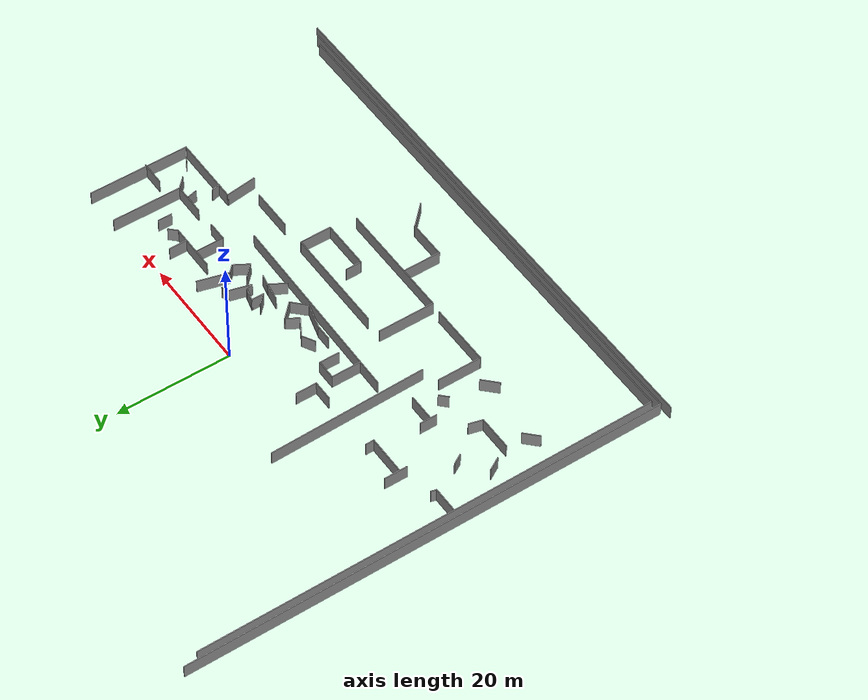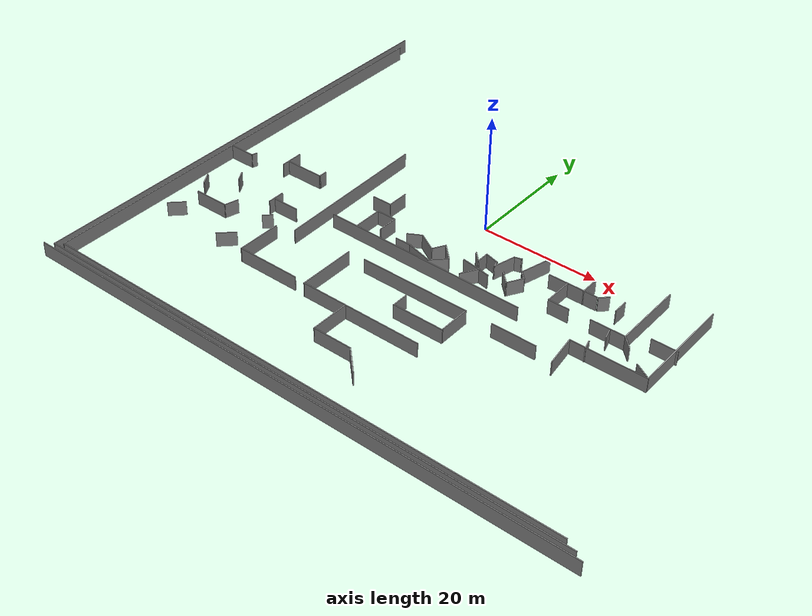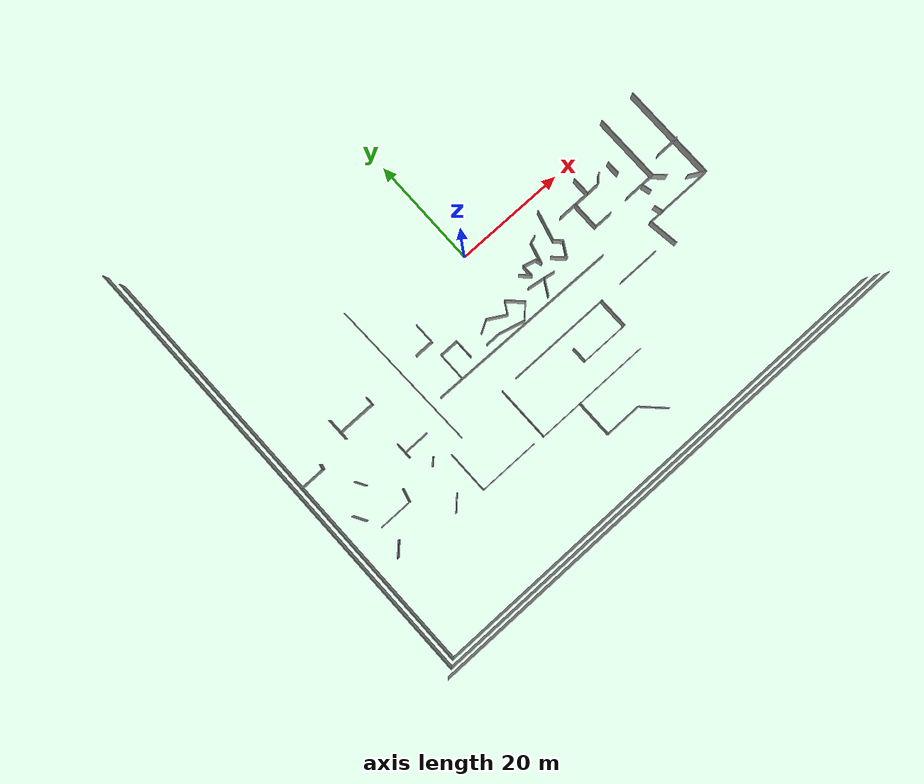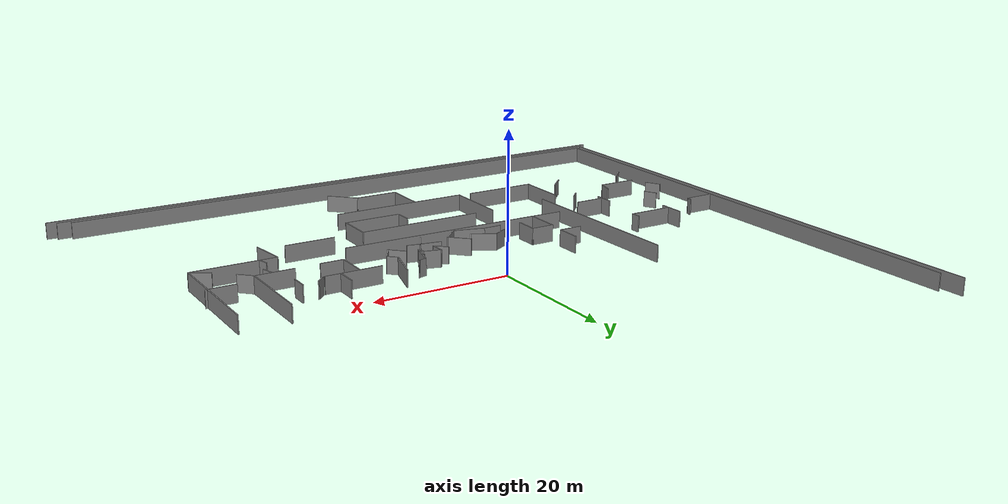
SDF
<sdf version="1.6">
 <model name="zee_floor">
  <pose>0.886578 0.586712 0 0 -0 0</pose>
  <link name="Wall_109">
   <collision name="Wall_109_Collision">
    <geometry><box><size>2 0.15 2.5</size></box></geometry>
    <pose>0 0 1.25 0 -0 0</pose>
   </collision>
   <visual name="Wall_109_Visual">
    <pose>0 0 1.25 0 -0 0</pose>
    <geometry><box><size>2 0.15 2.5</size></box></geometry>
    <material>
     <script><uri>file://media/materials/scripts/gazebo.material</uri><name>Gazebo/Grey</name></script>
     <ambient>1 1 1 1</ambient>
    </material>
    <meta><layer>0</layer></meta>
   </visual>
   <pose>-37.8806 -16.8796 0 0 -0 2.0944</pose>
  </link>
  <link name="Wall_11">
   <collision name="Wall_11_Collision">
    <geometry><box><size>3.5 0.15 2.5</size></box></geometry>
    <pose>0 0 1.25 0 -0 0</pose>
   </collision>
   <visual name="Wall_11_Visual">
    <pose>0 0 1.25 0 -0 0</pose>
    <geometry><box><size>3.5 0.15 2.5</size></box></geometry>
    <material>
     <script><uri>file://media/materials/scripts/gazebo.material</uri><name>Gazebo/Grey</name></script>
     <ambient>1 1 1 1</ambient>
    </material>
    <meta><layer>0</layer></meta>
   </visual>
   <pose>-15.9639 -7.56174 0 0 -0 0</pose>
  </link>
  <link name="Wall_112">
   <collision name="Wall_112_Collision">
    <geometry><box><size>6.75 0.15 2.5</size></box></geometry>
    <pose>0 0 1.25 0 -0 0</pose>
   </collision>
   <visual name="Wall_112_Visual">
    <pose>0 0 1.25 0 -0 0</pose>
    <geometry><box><size>6.75 0.15 2.5</size></box></geometry>
    <material>
     <script><uri>file://media/materials/scripts/gazebo.material</uri><name>Gazebo/Grey</name></script>
     <ambient>1 1 1 1</ambient>
    </material>
    <meta><layer>0</layer></meta>
   </visual>
   <pose>-31.3744 -8.64784 0 0 -0 0</pose>
  </link>
  <link name="Wall_113">
   <collision name="Wall_113_Collision">
    <geometry><box><size>1.5 0.15 2.5</size></box></geometry>
    <pose>0 0 1.25 0 -0 0</pose>
   </collision>
   <visual name="Wall_113_Visual">
    <pose>0 0 1.25 0 -0 0</pose>
    <geometry><box><size>1.5 0.15 2.5</size></box></geometry>
    <material>
     <script><uri>file://media/materials/scripts/gazebo.material</uri><name>Gazebo/Grey</name></script>
     <ambient>1 1 1 1</ambient>
    </material>
    <meta><layer>0</layer></meta>
   </visual>
   <pose>-28.0744 -7.97284 0 0 -0 1.5708</pose>
  </link>
  <link name="Wall_12">
   <collision name="Wall_12_Collision">
    <geometry><box><size>3.75 0.15 2.5</size></box></geometry>
    <pose>0 0 1.25 0 -0 0</pose>
   </collision>
   <visual name="Wall_12_Visual">
    <pose>0 0 1.25 0 -0 0</pose>
    <geometry><box><size>3.75 0.15 2.5</size></box></geometry>
    <material>
     <script><uri>file://media/materials/scripts/gazebo.material</uri><name>Gazebo/Grey</name></script>
     <ambient>1 1 1 1</ambient>
    </material>
    <meta><layer>0</layer></meta>
   </visual>
   <pose>-14.2889 -5.76174 0 0 -0 1.5708</pose>
  </link>
  <link name="Wall_128">
   <collision name="Wall_128_Collision">
    <geometry><box><size>95.75 0.15 2.5</size></box></geometry>
    <pose>0 0 1.25 0 -0 0</pose>
   </collision>
   <visual name="Wall_128_Visual">
    <pose>0 0 1.25 0 -0 0</pose>
    <geometry><box><size>95.75 0.15 2.5</size></box></geometry>
    <material>
     <script><uri>file://media/materials/scripts/gazebo.material</uri><name>Gazebo/Grey</name></script>
     <ambient>1 1 1 1</ambient>
    </material>
    <meta><layer>0</layer></meta>
   </visual>
   <pose>0.013723 -48.8 0 0 -0 0</pose>
  </link>
  <link name="Wall_133">
   <collision name="Wall_133_Collision">
    <geometry><box><size>84 0.15 2.5</size></box></geometry>
    <pose>0 0 1.25 0 -0 0</pose>
   </collision>
   <visual name="Wall_133_Visual">
    <pose>0 0 1.25 0 -0 0</pose>
    <geometry><box><size>84 0.15 2.5</size></box></geometry>
    <material>
     <script><uri>file://media/materials/scripts/gazebo.material</uri><name>Gazebo/Grey</name></script>
     <ambient>1 1 1 1</ambient>
    </material>
    <meta><layer>0</layer></meta>
   </visual>
   <pose>-46.4006 -6.025 0 0 -0 -1.5708</pose>
  </link>
  <link name="Wall_134">
   <collision name="Wall_134_Collision">
    <geometry><box><size>93 0.15 2.5</size></box></geometry>
    <pose>0 0 1.25 0 -0 0</pose>
   </collision>
   <visual name="Wall_134_Visual">
    <pose>0 0 1.25 0 -0 0</pose>
    <geometry><box><size>93 0.15 2.5</size></box></geometry>
    <material>
     <script><uri>file://media/materials/scripts/gazebo.material</uri><name>Gazebo/Grey</name></script>
     <ambient>1 1 1 1</ambient>
    </material>
    <meta><layer>0</layer></meta>
   </visual>
   <pose>0.024363 -47.95 0 0 -0 0</pose>
  </link>
  <link name="Wall_139">
   <collision name="Wall_139_Collision">
    <geometry><box><size>80.25 0.15 2.5</size></box></geometry>
    <pose>0 0 1.25 0 -0 0</pose>
   </collision>
   <visual name="Wall_139_Visual">
    <pose>0 0 1.25 0 -0 0</pose>
    <geometry><box><size>80.25 0.15 2.5</size></box></geometry>
    <material>
     <script><uri>file://media/materials/scripts/gazebo.material</uri><name>Gazebo/Grey</name></script>
     <ambient>1 1 1 1</ambient>
    </material>
    <meta><layer>0</layer></meta>
   </visual>
   <pose>-45.2924 -7.01993 0 0 -0 -1.5708</pose>
  </link>
  <link name="Wall_140">
   <collision name="Wall_140_Collision">
    <geometry><box><size>90 0.15 2.5</size></box></geometry>
    <pose>0 0 1.25 0 -0 0</pose>
   </collision>
   <visual name="Wall_140_Visual">
    <pose>0 0 1.25 0 -0 0</pose>
    <geometry><box><size>90 0.15 2.5</size></box></geometry>
    <material>
     <script><uri>file://media/materials/scripts/gazebo.material</uri><name>Gazebo/Grey</name></script>
     <ambient>1 1 1 1</ambient>
    </material>
    <meta><layer>0</layer></meta>
   </visual>
   <pose>-0.367412 -47.0699 0 0 -0 0</pose>
  </link>
  <link name="Wall_145">
   <collision name="Wall_145_Collision">
    <geometry><box><size>18.75 0.15 2.5</size></box></geometry>
    <pose>0 0 1.25 0 -0 0</pose>
   </collision>
   <visual name="Wall_145_Visual">
    <pose>0 0 1.25 0 -0 0</pose>
    <geometry><box><size>18.75 0.15 2.5</size></box></geometry>
    <material>
     <script><uri>file://media/materials/scripts/gazebo.material</uri><name>Gazebo/Grey</name></script>
     <ambient>1 1 1 1</ambient>
    </material>
    <meta><layer>0</layer></meta>
   </visual>
   <pose>1.13676 -21.0403 0 0 -0 0</pose>
  </link>
  <link name="Wall_146">
   <collision name="Wall_146_Collision">
    <geometry><box><size>5.45275 0.15 2.5</size></box></geometry>
    <pose>0 0 1.25 0 -0 0</pose>
   </collision>
   <visual name="Wall_146_Visual">
    <pose>0 0 1.25 0 -0 0</pose>
    <geometry><box><size>5.45275 0.15 2.5</size></box></geometry>
    <material>
     <script><uri>file://media/materials/scripts/gazebo.material</uri><name>Gazebo/Grey</name></script>
     <ambient>1 1 1 1</ambient>
    </material>
    <meta><layer>0</layer></meta>
   </visual>
   <pose>10.4368 -23.6916 0 0 -0 -1.5708</pose>
  </link>
  <link name="Wall_147">
   <collision name="Wall_147_Collision">
    <geometry><box><size>8.75 0.15 2.5</size></box></geometry>
    <pose>0 0 1.25 0 -0 0</pose>
   </collision>
   <visual name="Wall_147_Visual">
    <pose>0 0 1.25 0 -0 0</pose>
    <geometry><box><size>8.75 0.15 2.5</size></box></geometry>
    <material>
     <script><uri>file://media/materials/scripts/gazebo.material</uri><name>Gazebo/Grey</name></script>
     <ambient>1 1 1 1</ambient>
    </material>
    <meta><layer>0</layer></meta>
   </visual>
   <pose>6.13676 -26.4845 0 0 -0 3.14159</pose>
  </link>
  <link name="Wall_148">
   <collision name="Wall_148_Collision">
    <geometry><box><size>2.70275 0.15 2.5</size></box></geometry>
    <pose>0 0 1.25 0 -0 0</pose>
   </collision>
   <visual name="Wall_148_Visual">
    <pose>0 0 1.25 0 -0 0</pose>
    <geometry><box><size>2.70275 0.15 2.5</size></box></geometry>
    <material>
     <script><uri>file://media/materials/scripts/gazebo.material</uri><name>Gazebo/Grey</name></script>
     <ambient>1 1 1 1</ambient>
    </material>
    <meta><layer>0</layer></meta>
   </visual>
   <pose>1.83676 -25.0666 0 0 -0 1.5708</pose>
  </link>
  <link name="Wall_151">
   <collision name="Wall_151_Collision">
    <geometry><box><size>21 0.15 2.5</size></box></geometry>
    <pose>0 0 1.25 0 -0 0</pose>
   </collision>
   <visual name="Wall_151_Visual">
    <pose>0 0 1.25 0 -0 0</pose>
    <geometry><box><size>21 0.15 2.5</size></box></geometry>
    <material>
     <script><uri>file://media/materials/scripts/gazebo.material</uri><name>Gazebo/Grey</name></script>
     <ambient>1 1 1 1</ambient>
    </material>
    <meta><layer>0</layer></meta>
   </visual>
   <pose>-0.808756 -30.9593 0 0 -0 3.14159</pose>
  </link>
  <link name="Wall_152">
   <collision name="Wall_152_Collision">
    <geometry><box><size>10 0.15 2.5</size></box></geometry>
    <pose>0 0 1.25 0 -0 0</pose>
   </collision>
   <visual name="Wall_152_Visual">
    <pose>0 0 1.25 0 -0 0</pose>
    <geometry><box><size>10 0.15 2.5</size></box></geometry>
    <material>
     <script><uri>file://media/materials/scripts/gazebo.material</uri><name>Gazebo/Grey</name></script>
     <ambient>1 1 1 1</ambient>
    </material>
    <meta><layer>0</layer></meta>
   </visual>
   <pose>-11.2338 -26.0343 0 0 -0 1.5708</pose>
  </link>
  <link name="Wall_154">
   <collision name="Wall_154_Collision">
    <geometry><box><size>11 0.15 2.5</size></box></geometry>
    <pose>0 0 1.25 0 -0 0</pose>
   </collision>
   <visual name="Wall_154_Visual">
    <pose>0 0 1.25 0 -0 0</pose>
    <geometry><box><size>11 0.15 2.5</size></box></geometry>
    <material>
     <script><uri>file://media/materials/scripts/gazebo.material</uri><name>Gazebo/Grey</name></script>
     <ambient>1 1 1 1</ambient>
    </material>
    <meta><layer>0</layer></meta>
   </visual>
   <pose>-18.6414 -30.7722 0 0 -0 3.14159</pose>
  </link>
  <link name="Wall_155">
   <collision name="Wall_155_Collision">
    <geometry><box><size>7.75 0.15 2.5</size></box></geometry>
    <pose>0 0 1.25 0 -0 0</pose>
   </collision>
   <visual name="Wall_155_Visual">
    <pose>0 0 1.25 0 -0 0</pose>
    <geometry><box><size>7.75 0.15 2.5</size></box></geometry>
    <material>
     <script><uri>file://media/materials/scripts/gazebo.material</uri><name>Gazebo/Grey</name></script>
     <ambient>1 1 1 1</ambient>
    </material>
    <meta><layer>0</layer></meta>
   </visual>
   <pose>-24.0664 -26.9722 0 0 -0 1.5708</pose>
  </link>
  <link name="Wall_157">
   <collision name="Wall_157_Collision">
    <geometry><box><size>6.75 0.15 2.5</size></box></geometry>
    <pose>0 0 1.25 0 -0 0</pose>
   </collision>
   <visual name="Wall_157_Visual">
    <pose>0 0 1.25 0 -0 0</pose>
    <geometry><box><size>6.75 0.15 2.5</size></box></geometry>
    <material>
     <script><uri>file://media/materials/scripts/gazebo.material</uri><name>Gazebo/Grey</name></script>
     <ambient>1 1 1 1</ambient>
    </material>
    <meta><layer>0</layer></meta>
   </visual>
   <pose>-3.36909 -34.2723 0 0 -0 -1.5708</pose>
  </link>
  <link name="Wall_158">
   <collision name="Wall_158_Collision">
    <geometry><box><size>6.75 0.15 2.5</size></box></geometry>
    <pose>0 0 1.25 0 -0 0</pose>
   </collision>
   <visual name="Wall_158_Visual">
    <pose>0 0 1.25 0 -0 0</pose>
    <geometry><box><size>6.75 0.15 2.5</size></box></geometry>
    <material>
     <script><uri>file://media/materials/scripts/gazebo.material</uri><name>Gazebo/Grey</name></script>
     <ambient>1 1 1 1</ambient>
    </material>
    <meta><layer>0</layer></meta>
   </visual>
   <pose>-0.069089 -37.5723 0 0 -0 0</pose>
  </link>
  <link name="Wall_159">
   <collision name="Wall_159_Collision">
    <geometry><box><size>5 0.15 2.5</size></box></geometry>
    <pose>0 0 1.25 0 -0 0</pose>
   </collision>
   <visual name="Wall_159_Visual">
    <pose>0 0 1.25 0 -0 0</pose>
    <geometry><box><size>5 0.15 2.5</size></box></geometry>
    <material>
     <script><uri>file://media/materials/scripts/gazebo.material</uri><name>Gazebo/Grey</name></script>
     <ambient>1 1 1 1</ambient>
    </material>
    <meta><layer>0</layer></meta>
   </visual>
   <pose>4.94564 -39.287 0 0 -0 -0.785398</pose>
  </link>
  <link name="Wall_173">
   <collision name="Wall_173_Collision">
    <geometry><box><size>4.5 0.15 2.5</size></box></geometry>
    <pose>0 0 1.25 0 -0 0</pose>
   </collision>
   <visual name="Wall_173_Visual">
    <pose>0 0 1.25 0 -0 0</pose>
    <geometry><box><size>4.5 0.15 2.5</size></box></geometry>
    <material>
     <script><uri>file://media/materials/scripts/gazebo.material</uri><name>Gazebo/Grey</name></script>
     <ambient>1 1 1 1</ambient>
    </material>
    <meta><layer>0</layer></meta>
   </visual>
   <pose>-26.9007 -17.9776 0 0 -0 0</pose>
  </link>
  <link name="Wall_177">
   <collision name="Wall_177_Collision">
    <geometry><box><size>3 0.15 2.5</size></box></geometry>
    <pose>0 0 1.25 0 -0 0</pose>
   </collision>
   <visual name="Wall_177_Visual">
    <pose>0 0 1.25 0 -0 0</pose>
    <geometry><box><size>3 0.15 2.5</size></box></geometry>
    <material>
     <script><uri>file://media/materials/scripts/gazebo.material</uri><name>Gazebo/Grey</name></script>
     <ambient>1 1 1 1</ambient>
    </material>
    <meta><layer>0</layer></meta>
   </visual>
   <pose>-29.3444 -17.5874 0 0 -0 1.5708</pose>
  </link>
  <link name="Wall_179">
   <collision name="Wall_179_Collision">
    <geometry><box><size>6 0.15 2.5</size></box></geometry>
    <pose>0 0 1.25 0 -0 0</pose>
   </collision>
   <visual name="Wall_179_Visual">
    <pose>0 0 1.25 0 -0 0</pose>
    <geometry><box><size>6 0.15 2.5</size></box></geometry>
    <material>
     <script><uri>file://media/materials/scripts/gazebo.material</uri><name>Gazebo/Grey</name></script>
     <ambient>1 1 1 1</ambient>
    </material>
    <meta><layer>0</layer></meta>
   </visual>
   <pose>-36.9503 -24.2752 0 0 -0 0</pose>
  </link>
  <link name="Wall_180">
   <collision name="Wall_180_Collision">
    <geometry><box><size>2.5 0.15 2.5</size></box></geometry>
    <pose>0 0 1.25 0 -0 0</pose>
   </collision>
   <visual name="Wall_180_Visual">
    <pose>0 0 1.25 0 -0 0</pose>
    <geometry><box><size>2.5 0.15 2.5</size></box></geometry>
    <material>
     <script><uri>file://media/materials/scripts/gazebo.material</uri><name>Gazebo/Grey</name></script>
     <ambient>1 1 1 1</ambient>
    </material>
    <meta><layer>0</layer></meta>
   </visual>
   <pose>-33.7211 -23.1403 0 0 -0 1.309</pose>
  </link>
  <link name="Wall_182">
   <collision name="Wall_182_Collision">
    <geometry><box><size>2.5 0.15 2.5</size></box></geometry>
    <pose>0 0 1.25 0 -0 0</pose>
   </collision>
   <visual name="Wall_182_Visual">
    <pose>0 0 1.25 0 -0 0</pose>
    <geometry><box><size>2.5 0.15 2.5</size></box></geometry>
    <material>
     <script><uri>file://media/materials/scripts/gazebo.material</uri><name>Gazebo/Grey</name></script>
     <ambient>1 1 1 1</ambient>
    </material>
    <meta><layer>0</layer></meta>
   </visual>
   <pose>-41.6131 -20.9089 0 0 -0 2.0944</pose>
  </link>
  <link name="Wall_185">
   <collision name="Wall_185_Collision">
    <geometry><box><size>4 0.15 2.5</size></box></geometry>
    <pose>0 0 1.25 0 -0 0</pose>
   </collision>
   <visual name="Wall_185_Visual">
    <pose>0 0 1.25 0 -0 0</pose>
    <geometry><box><size>4 0.15 2.5</size></box></geometry>
    <material>
     <script><uri>file://media/materials/scripts/gazebo.material</uri><name>Gazebo/Grey</name></script>
     <ambient>1 1 1 1</ambient>
    </material>
    <meta><layer>0</layer></meta>
   </visual>
   <pose>-34.8589 -7.97311 0 0 -0 1.5708</pose>
  </link>
  <link name="Wall_191">
   <collision name="Wall_191_Collision">
    <geometry><box><size>4.5 0.15 2.5</size></box></geometry>
    <pose>0 0 1.25 0 -0 0</pose>
   </collision>
   <visual name="Wall_191_Visual">
    <pose>0 0 1.25 0 -0 0</pose>
    <geometry><box><size>4.5 0.15 2.5</size></box></geometry>
    <material>
     <script><uri>file://media/materials/scripts/gazebo.material</uri><name>Gazebo/Grey</name></script>
     <ambient>1 1 1 1</ambient>
    </material>
    <meta><layer>0</layer></meta>
   </visual>
   <pose>-42.9721 -11.1448 0 0 -0 0</pose>
  </link>
  <link name="Wall_192">
   <collision name="Wall_192_Collision">
    <geometry><box><size>1 0.15 2.5</size></box></geometry>
    <pose>0 0 1.25 0 -0 0</pose>
   </collision>
   <visual name="Wall_192_Visual">
    <pose>0 0 1.25 0 -0 0</pose>
    <geometry><box><size>1 0.15 2.5</size></box></geometry>
    <material>
     <script><uri>file://media/materials/scripts/gazebo.material</uri><name>Gazebo/Grey</name></script>
     <ambient>1 1 1 1</ambient>
    </material>
    <meta><layer>0</layer></meta>
   </visual>
   <pose>-40.6871 -10.7343 0 0 -0 1.309</pose>
  </link>
  <link name="Wall_202">
   <collision name="Wall_202_Collision">
    <geometry><box><size>3.25 0.15 2.5</size></box></geometry>
    <pose>0 0 1.25 0 -0 0</pose>
   </collision>
   <visual name="Wall_202_Visual">
    <pose>0 0 1.25 0 -0 0</pose>
    <geometry><box><size>3.25 0.15 2.5</size></box></geometry>
    <material>
     <script><uri>file://media/materials/scripts/gazebo.material</uri><name>Gazebo/Grey</name></script>
     <ambient>1 1 1 1</ambient>
    </material>
    <meta><layer>0</layer></meta>
   </visual>
   <pose>-28.5998 -29.3767 0 0 -0 0.785398</pose>
  </link>
  <link name="Wall_204">
   <collision name="Wall_204_Collision">
    <geometry><box><size>1.75 0.15 2.5</size></box></geometry>
    <pose>0 0 1.25 0 -0 0</pose>
   </collision>
   <visual name="Wall_204_Visual">
    <pose>0 0 1.25 0 -0 0</pose>
    <geometry><box><size>1.75 0.15 2.5</size></box></geometry>
    <material>
     <script><uri>file://media/materials/scripts/gazebo.material</uri><name>Gazebo/Grey</name></script>
     <ambient>1 1 1 1</ambient>
    </material>
    <meta><layer>0</layer></meta>
   </visual>
   <pose>-27.0074 -21.9822 0 0 -0 0.785398</pose>
  </link>
  <link name="Wall_206">
   <collision name="Wall_206_Collision">
    <geometry><box><size>3 0.15 2.5</size></box></geometry>
    <pose>0 0 1.25 0 -0 0</pose>
   </collision>
   <visual name="Wall_206_Visual">
    <pose>0 0 1.25 0 -0 0</pose>
    <geometry><box><size>3 0.15 2.5</size></box></geometry>
    <material>
     <script><uri>file://media/materials/scripts/gazebo.material</uri><name>Gazebo/Grey</name></script>
     <ambient>1 1 1 1</ambient>
    </material>
    <meta><layer>0</layer></meta>
   </visual>
   <pose>-40.2924 -28.616 0 0 -0 0.785398</pose>
  </link>
  <link name="Wall_226">
   <collision name="Wall_226_Collision">
    <geometry><box><size>1.75 0.15 2.5</size></box></geometry>
    <pose>0 0 1.25 0 -0 0</pose>
   </collision>
   <visual name="Wall_226_Visual">
    <pose>0 0 1.25 0 -0 0</pose>
    <geometry><box><size>1.75 0.15 2.5</size></box></geometry>
    <material>
     <script><uri>file://media/materials/scripts/gazebo.material</uri><name>Gazebo/Grey</name></script>
     <ambient>1 1 1 1</ambient>
    </material>
    <meta><layer>0</layer></meta>
   </visual>
   <pose>23.7498 -5.92107 0 0 -0 0.785398</pose>
  </link>
  <link name="Wall_228">
   <collision name="Wall_228_Collision">
    <geometry><box><size>2.5 0.15 2.5</size></box></geometry>
    <pose>0 0 1.25 0 -0 0</pose>
   </collision>
   <visual name="Wall_228_Visual">
    <pose>0 0 1.25 0 -0 0</pose>
    <geometry><box><size>2.5 0.15 2.5</size></box></geometry>
    <material>
     <script><uri>file://media/materials/scripts/gazebo.material</uri><name>Gazebo/Grey</name></script>
     <ambient>1 1 1 1</ambient>
    </material>
    <meta><layer>0</layer></meta>
   </visual>
   <pose>26.6492 -6.23293 0 0 -0 -1.5708</pose>
  </link>
  <link name="Wall_230">
   <collision name="Wall_230_Collision">
    <geometry><box><size>4.25 0.15 2.5</size></box></geometry>
    <pose>0 0 1.25 0 -0 0</pose>
   </collision>
   <visual name="Wall_230_Visual">
    <pose>0 0 1.25 0 -0 0</pose>
    <geometry><box><size>4.25 0.15 2.5</size></box></geometry>
    <material>
     <script><uri>file://media/materials/scripts/gazebo.material</uri><name>Gazebo/Grey</name></script>
     <ambient>1 1 1 1</ambient>
    </material>
    <meta><layer>0</layer></meta>
   </visual>
   <pose>35.7023 -9.53687 0 0 -0 0</pose>
  </link>
  <link name="Wall_234">
   <collision name="Wall_234_Collision">
    <geometry><box><size>2.5 0.15 2.5</size></box></geometry>
    <pose>0 0 1.25 0 -0 0</pose>
   </collision>
   <visual name="Wall_234_Visual">
    <pose>0 0 1.25 0 -0 0</pose>
    <geometry><box><size>2.5 0.15 2.5</size></box></geometry>
    <material>
     <script><uri>file://media/materials/scripts/gazebo.material</uri><name>Gazebo/Grey</name></script>
     <ambient>1 1 1 1</ambient>
    </material>
    <meta><layer>0</layer></meta>
   </visual>
   <pose>31.4291 -12.2181 0 0 -0 -0.785398</pose>
  </link>
  <link name="Wall_236">
   <collision name="Wall_236_Collision">
    <geometry><box><size>2.75 0.15 2.5</size></box></geometry>
    <pose>0 0 1.25 0 -0 0</pose>
   </collision>
   <visual name="Wall_236_Visual">
    <pose>0 0 1.25 0 -0 0</pose>
    <geometry><box><size>2.75 0.15 2.5</size></box></geometry>
    <material>
     <script><uri>file://media/materials/scripts/gazebo.material</uri><name>Gazebo/Grey</name></script>
     <ambient>1 1 1 1</ambient>
    </material>
    <meta><layer>0</layer></meta>
   </visual>
   <pose>36.0099 -15.9986 0 0 -0 2.61799</pose>
  </link>
  <link name="Wall_238">
   <collision name="Wall_238_Collision">
    <geometry><box><size>1.75 0.15 2.5</size></box></geometry>
    <pose>0 0 1.25 0 -0 0</pose>
   </collision>
   <visual name="Wall_238_Visual">
    <pose>0 0 1.25 0 -0 0</pose>
    <geometry><box><size>1.75 0.15 2.5</size></box></geometry>
    <material>
     <script><uri>file://media/materials/scripts/gazebo.material</uri><name>Gazebo/Grey</name></script>
     <ambient>1 1 1 1</ambient>
    </material>
    <meta><layer>0</layer></meta>
   </visual>
   <pose>27.5076 -16.2185 0 0 -0 -1.309</pose>
  </link>
  <link name="Wall_240">
   <collision name="Wall_240_Collision">
    <geometry><box><size>1.75 0.15 2.5</size></box></geometry>
    <pose>0 0 1.25 0 -0 0</pose>
   </collision>
   <visual name="Wall_240_Visual">
    <pose>0 0 1.25 0 -0 0</pose>
    <geometry><box><size>1.75 0.15 2.5</size></box></geometry>
    <material>
     <script><uri>file://media/materials/scripts/gazebo.material</uri><name>Gazebo/Grey</name></script>
     <ambient>1 1 1 1</ambient>
    </material>
    <meta><layer>0</layer></meta>
   </visual>
   <pose>28.4274 -12.3976 0 0 -0 -1.309</pose>
  </link>
  <link name="Wall_242">
   <collision name="Wall_242_Collision">
    <geometry><box><size>7.5 0.15 2.5</size></box></geometry>
    <pose>0 0 1.25 0 -0 0</pose>
   </collision>
   <visual name="Wall_242_Visual">
    <pose>0 0 1.25 0 -0 0</pose>
    <geometry><box><size>7.5 0.15 2.5</size></box></geometry>
    <material>
     <script><uri>file://media/materials/scripts/gazebo.material</uri><name>Gazebo/Grey</name></script>
     <ambient>1 1 1 1</ambient>
    </material>
    <meta><layer>0</layer></meta>
   </visual>
   <pose>18.6128 -20.9727 0 0 -0 0</pose>
  </link>
  <link name="Wall_29">
   <collision name="Wall_29_Collision">
    <geometry><box><size>2.5 0.15 2.5</size></box></geometry>
    <pose>0 0 1.25 0 -0 0</pose>
   </collision>
   <visual name="Wall_29_Visual">
    <pose>0 0 1.25 0 -0 0</pose>
    <geometry><box><size>2.5 0.15 2.5</size></box></geometry>
    <material>
     <script><uri>file://media/materials/scripts/gazebo.material</uri><name>Gazebo/Grey</name></script>
     <ambient>1 1 1 1</ambient>
    </material>
    <meta><layer>0</layer></meta>
   </visual>
   <pose>-6.41295 -11.3279 0 0 -0 0.523599</pose>
  </link>
  <link name="Wall_3">
   <collision name="Wall_3_Collision">
    <geometry><box><size>35.0193 0.15 2.5</size></box></geometry>
    <pose>0 0 1.25 0 -0 0</pose>
   </collision>
   <visual name="Wall_3_Visual">
    <pose>0 0 1.25 0 -0 0</pose>
    <geometry><box><size>35.0193 0.15 2.5</size></box></geometry>
    <material>
     <script><uri>file://media/materials/scripts/gazebo.material</uri><name>Gazebo/Grey</name></script>
     <ambient>1 1 1 1</ambient>
    </material>
    <meta><layer>0</layer></meta>
   </visual>
   <pose>-1.83813 -15.491 0 0 -0 3.12782</pose>
  </link>
  <link name="Wall_30">
   <collision name="Wall_30_Collision">
    <geometry><box><size>3.75 0.15 2.5</size></box></geometry>
    <pose>0 0 1.25 0 -0 0</pose>
   </collision>
   <visual name="Wall_30_Visual">
    <pose>0 0 1.25 0 -0 0</pose>
    <geometry><box><size>3.75 0.15 2.5</size></box></geometry>
    <material>
     <script><uri>file://media/materials/scripts/gazebo.material</uri><name>Gazebo/Grey</name></script>
     <ambient>1 1 1 1</ambient>
    </material>
    <meta><layer>0</layer></meta>
   </visual>
   <pose>-3.83652 -11.6404 0 0 -0 -0.523599</pose>
  </link>
  <link name="Wall_31">
   <collision name="Wall_31_Collision">
    <geometry><box><size>2.5 0.15 2.5</size></box></geometry>
    <pose>0 0 1.25 0 -0 0</pose>
   </collision>
   <visual name="Wall_31_Visual">
    <pose>0 0 1.25 0 -0 0</pose>
    <geometry><box><size>2.5 0.15 2.5</size></box></geometry>
    <material>
     <script><uri>file://media/materials/scripts/gazebo.material</uri><name>Gazebo/Grey</name></script>
     <ambient>1 1 1 1</ambient>
    </material>
    <meta><layer>0</layer></meta>
   </visual>
   <pose>-1.69018 -11.5228 0 0 -0 1.0472</pose>
  </link>
  <link name="Wall_32">
   <collision name="Wall_32_Collision">
    <geometry><box><size>3.5 0.15 2.5</size></box></geometry>
    <pose>0 0 1.25 0 -0 0</pose>
   </collision>
   <visual name="Wall_32_Visual">
    <pose>0 0 1.25 0 -0 0</pose>
    <geometry><box><size>3.5 0.15 2.5</size></box></geometry>
    <material>
     <script><uri>file://media/materials/scripts/gazebo.material</uri><name>Gazebo/Grey</name></script>
     <ambient>1 1 1 1</ambient>
    </material>
    <meta><layer>0</layer></meta>
   </visual>
   <pose>0.081725 -11.6897 0 0 -0 -0.785398</pose>
  </link>
  <link name="Wall_33">
   <collision name="Wall_33_Collision">
    <geometry><box><size>3.25 0.15 2.5</size></box></geometry>
    <pose>0 0 1.25 0 -0 0</pose>
   </collision>
   <visual name="Wall_33_Visual">
    <pose>0 0 1.25 0 -0 0</pose>
    <geometry><box><size>3.25 0.15 2.5</size></box></geometry>
    <material>
     <script><uri>file://media/materials/scripts/gazebo.material</uri><name>Gazebo/Grey</name></script>
     <ambient>1 1 1 1</ambient>
    </material>
    <meta><layer>0</layer></meta>
   </visual>
   <pose>0.170113 -13.9701 0 0 -0 -2.35619</pose>
  </link>
  <link name="Wall_34">
   <collision name="Wall_34_Collision">
    <geometry><box><size>4.75 0.15 2.5</size></box></geometry>
    <pose>0 0 1.25 0 -0 0</pose>
   </collision>
   <visual name="Wall_34_Visual">
    <pose>0 0 1.25 0 -0 0</pose>
    <geometry><box><size>4.75 0.15 2.5</size></box></geometry>
    <material>
     <script><uri>file://media/materials/scripts/gazebo.material</uri><name>Gazebo/Grey</name></script>
     <ambient>1 1 1 1</ambient>
    </material>
    <meta><layer>0</layer></meta>
   </visual>
   <pose>-3.14753 -14.4708 0 0 -0 2.87979</pose>
  </link>
  <link name="Wall_35">
   <collision name="Wall_35_Collision">
    <geometry><box><size>2.75 0.15 2.5</size></box></geometry>
    <pose>0 0 1.25 0 -0 0</pose>
   </collision>
   <visual name="Wall_35_Visual">
    <pose>0 0 1.25 0 -0 0</pose>
    <geometry><box><size>2.75 0.15 2.5</size></box></geometry>
    <material>
     <script><uri>file://media/materials/scripts/gazebo.material</uri><name>Gazebo/Grey</name></script>
     <ambient>1 1 1 1</ambient>
    </material>
    <meta><layer>0</layer></meta>
   </visual>
   <pose>-6.66916 -13.8755 0 0 -0 3.14159</pose>
  </link>
  <link name="Wall_37">
   <collision name="Wall_37_Collision">
    <geometry><box><size>2.25 0.15 2.5</size></box></geometry>
    <pose>0 0 1.25 0 -0 0</pose>
   </collision>
   <visual name="Wall_37_Visual">
    <pose>0 0 1.25 0 -0 0</pose>
    <geometry><box><size>2.25 0.15 2.5</size></box></geometry>
    <material>
     <script><uri>file://media/materials/scripts/gazebo.material</uri><name>Gazebo/Grey</name></script>
     <ambient>1 1 1 1</ambient>
    </material>
    <meta><layer>0</layer></meta>
   </visual>
   <pose>4.14087 -9.72122 0 0 -0 -0.785398</pose>
  </link>
  <link name="Wall_38">
   <collision name="Wall_38_Collision">
    <geometry><box><size>2.25 0.15 2.5</size></box></geometry>
    <pose>0 0 1.25 0 -0 0</pose>
   </collision>
   <visual name="Wall_38_Visual">
    <pose>0 0 1.25 0 -0 0</pose>
    <geometry><box><size>2.25 0.15 2.5</size></box></geometry>
    <material>
     <script><uri>file://media/materials/scripts/gazebo.material</uri><name>Gazebo/Grey</name></script>
     <ambient>1 1 1 1</ambient>
    </material>
    <meta><layer>0</layer></meta>
   </visual>
   <pose>4.88333 -9.41368 0 0 -0 1.5708</pose>
  </link>
  <link name="Wall_39">
   <collision name="Wall_39_Collision">
    <geometry><box><size>2.5 0.15 2.5</size></box></geometry>
    <pose>0 0 1.25 0 -0 0</pose>
   </collision>
   <visual name="Wall_39_Visual">
    <pose>0 0 1.25 0 -0 0</pose>
    <geometry><box><size>2.5 0.15 2.5</size></box></geometry>
    <material>
     <script><uri>file://media/materials/scripts/gazebo.material</uri><name>Gazebo/Grey</name></script>
     <ambient>1 1 1 1</ambient>
    </material>
    <meta><layer>0</layer></meta>
   </visual>
   <pose>6.0183 -8.66779 0 0 -0 -0.261799</pose>
  </link>
  <link name="Wall_40">
   <collision name="Wall_40_Collision">
    <geometry><box><size>1.25 0.15 2.5</size></box></geometry>
    <pose>0 0 1.25 0 -0 0</pose>
   </collision>
   <visual name="Wall_40_Visual">
    <pose>0 0 1.25 0 -0 0</pose>
    <geometry><box><size>1.25 0.15 2.5</size></box></geometry>
    <material>
     <script><uri>file://media/materials/scripts/gazebo.material</uri><name>Gazebo/Grey</name></script>
     <ambient>1 1 1 1</ambient>
    </material>
    <meta><layer>0</layer></meta>
   </visual>
   <pose>7.29561 -9.50316 0 0 -0 -1.309</pose>
  </link>
  <link name="Wall_41">
   <collision name="Wall_41_Collision">
    <geometry><box><size>4 0.15 2.5</size></box></geometry>
    <pose>0 0 1.25 0 -0 0</pose>
   </collision>
   <visual name="Wall_41_Visual">
    <pose>0 0 1.25 0 -0 0</pose>
    <geometry><box><size>4 0.15 2.5</size></box></geometry>
    <material>
     <script><uri>file://media/materials/scripts/gazebo.material</uri><name>Gazebo/Grey</name></script>
     <ambient>1 1 1 1</ambient>
    </material>
    <meta><layer>0</layer></meta>
   </visual>
   <pose>7.93619 -8.17502 0 0 -0 1.309</pose>
  </link>
  <link name="Wall_42">
   <collision name="Wall_42_Collision">
    <geometry><box><size>1.25 0.15 2.5</size></box></geometry>
    <pose>0 0 1.25 0 -0 0</pose>
   </collision>
   <visual name="Wall_42_Visual">
    <pose>0 0 1.25 0 -0 0</pose>
    <geometry><box><size>1.25 0.15 2.5</size></box></geometry>
    <material>
     <script><uri>file://media/materials/scripts/gazebo.material</uri><name>Gazebo/Grey</name></script>
     <ambient>1 1 1 1</ambient>
    </material>
    <meta><layer>0</layer></meta>
   </visual>
   <pose>8.96567 -6.17326 0 0 -0 0.261799</pose>
  </link>
  <link name="Wall_43">
   <collision name="Wall_43_Collision">
    <geometry><box><size>0.25 0.15 2.5</size></box></geometry>
    <pose>0 0 1.25 0 -0 0</pose>
   </collision>
   <visual name="Wall_43_Visual">
    <pose>0 0 1.25 0 -0 0</pose>
    <geometry><box><size>0.25 0.15 2.5</size></box></geometry>
    <material>
     <script><uri>file://media/materials/scripts/gazebo.material</uri><name>Gazebo/Grey</name></script>
     <ambient>1 1 1 1</ambient>
    </material>
    <meta><layer>0</layer></meta>
   </visual>
   <pose>9.53229 -5.99555 0 0 -0 0.785398</pose>
  </link>
  <link name="Wall_45">
   <collision name="Wall_45_Collision">
    <geometry><box><size>3.17584 0.15 2.5</size></box></geometry>
    <pose>0 0 1.25 0 -0 0</pose>
   </collision>
   <visual name="Wall_45_Visual">
    <pose>0 0 1.25 0 -0 0</pose>
    <geometry><box><size>3.17584 0.15 2.5</size></box></geometry>
    <material>
     <script><uri>file://media/materials/scripts/gazebo.material</uri><name>Gazebo/Grey</name></script>
     <ambient>1 1 1 1</ambient>
    </material>
    <meta><layer>0</layer></meta>
   </visual>
   <pose>4.58969 -11.8271 0 0 -0 -0.144347</pose>
  </link>
  <link name="Wall_46">
   <collision name="Wall_46_Collision">
    <geometry><box><size>3.25 0.15 2.5</size></box></geometry>
    <pose>0 0 1.25 0 -0 0</pose>
   </collision>
   <visual name="Wall_46_Visual">
    <pose>0 0 1.25 0 -0 0</pose>
    <geometry><box><size>3.25 0.15 2.5</size></box></geometry>
    <material>
     <script><uri>file://media/materials/scripts/gazebo.material</uri><name>Gazebo/Grey</name></script>
     <ambient>1 1 1 1</ambient>
    </material>
    <meta><layer>0</layer></meta>
   </visual>
   <pose>5.37306 -13.3871 0 0 -0 -2.0944</pose>
  </link>
  <link name="Wall_48">
   <collision name="Wall_48_Collision">
    <geometry><box><size>2.03607 0.15 2.5</size></box></geometry>
    <pose>0 0 1.25 0 -0 0</pose>
   </collision>
   <visual name="Wall_48_Visual">
    <pose>0 0 1.25 0 -0 0</pose>
    <geometry><box><size>2.03607 0.15 2.5</size></box></geometry>
    <material>
     <script><uri>file://media/materials/scripts/gazebo.material</uri><name>Gazebo/Grey</name></script>
     <ambient>1 1 1 1</ambient>
    </material>
    <meta><layer>0</layer></meta>
   </visual>
   <pose>7.01188 -12.2283 0 0 -0 -0.195879</pose>
  </link>
  <link name="Wall_65">
   <collision name="Wall_65_Collision">
    <geometry><box><size>5.5 0.15 2.5</size></box></geometry>
    <pose>0 0 1.25 0 -0 0</pose>
   </collision>
   <visual name="Wall_65_Visual">
    <pose>0 0 1.25 0 -0 0</pose>
    <geometry><box><size>5.5 0.15 2.5</size></box></geometry>
    <material>
     <script><uri>file://media/materials/scripts/gazebo.material</uri><name>Gazebo/Grey</name></script>
     <ambient>1 1 1 1</ambient>
    </material>
    <meta><layer>0</layer></meta>
   </visual>
   <pose>12.0474 -5.94219 0 0 -0 -1.8326</pose>
  </link>
  <link name="Wall_66">
   <collision name="Wall_66_Collision">
    <geometry><box><size>1.75 0.15 2.5</size></box></geometry>
    <pose>0 0 1.25 0 -0 0</pose>
   </collision>
   <visual name="Wall_66_Visual">
    <pose>0 0 1.25 0 -0 0</pose>
    <geometry><box><size>1.75 0.15 2.5</size></box></geometry>
    <material>
     <script><uri>file://media/materials/scripts/gazebo.material</uri><name>Gazebo/Grey</name></script>
     <ambient>1 1 1 1</ambient>
    </material>
    <meta><layer>0</layer></meta>
   </visual>
   <pose>11.9207 -9.09173 0 0 -0 -0.785398</pose>
  </link>
  <link name="Wall_67">
   <collision name="Wall_67_Collision">
    <geometry><box><size>3 0.15 2.5</size></box></geometry>
    <pose>0 0 1.25 0 -0 0</pose>
   </collision>
   <visual name="Wall_67_Visual">
    <pose>0 0 1.25 0 -0 0</pose>
    <geometry><box><size>3 0.15 2.5</size></box></geometry>
    <material>
     <script><uri>file://media/materials/scripts/gazebo.material</uri><name>Gazebo/Grey</name></script>
     <ambient>1 1 1 1</ambient>
    </material>
    <meta><layer>0</layer></meta>
   </visual>
   <pose>11.7739 -10.8915 0 0 -0 -2.0944</pose>
  </link>
  <link name="Wall_68">
   <collision name="Wall_68_Collision">
    <geometry><box><size>2.75 0.15 2.5</size></box></geometry>
    <pose>0 0 1.25 0 -0 0</pose>
   </collision>
   <visual name="Wall_68_Visual">
    <pose>0 0 1.25 0 -0 0</pose>
    <geometry><box><size>2.75 0.15 2.5</size></box></geometry>
    <material>
     <script><uri>file://media/materials/scripts/gazebo.material</uri><name>Gazebo/Grey</name></script>
     <ambient>1 1 1 1</ambient>
    </material>
    <meta><layer>0</layer></meta>
   </visual>
   <pose>10.1422 -11.2064 0 0 -0 2.35619</pose>
  </link>
  <link name="Wall_7">
   <collision name="Wall_7_Collision">
    <geometry><box><size>5.25 0.15 2.5</size></box></geometry>
    <pose>0 0 1.25 0 -0 0</pose>
   </collision>
   <visual name="Wall_7_Visual">
    <pose>0 0 1.25 0 -0 0</pose>
    <geometry><box><size>5.25 0.15 2.5</size></box></geometry>
    <material>
     <script><uri>file://media/materials/scripts/gazebo.material</uri><name>Gazebo/Grey</name></script>
     <ambient>1 1 1 1</ambient>
    </material>
    <meta><layer>0</layer></meta>
   </visual>
   <pose>-14.6136 -12.7511 0 0 -0 1.5708</pose>
  </link>
  <link name="Wall_8">
   <collision name="Wall_8_Collision">
    <geometry><box><size>3.5 0.15 2.5</size></box></geometry>
    <pose>0 0 1.25 0 -0 0</pose>
   </collision>
   <visual name="Wall_8_Visual">
    <pose>0 0 1.25 0 -0 0</pose>
    <geometry><box><size>3.5 0.15 2.5</size></box></geometry>
    <material>
     <script><uri>file://media/materials/scripts/gazebo.material</uri><name>Gazebo/Grey</name></script>
     <ambient>1 1 1 1</ambient>
    </material>
    <meta><layer>0</layer></meta>
   </visual>
   <pose>-12.9386 -10.2011 0 0 -0 0</pose>
  </link>
  <link name="Wall_82">
   <collision name="Wall_82_Collision">
    <geometry><box><size>8.25 0.15 2.5</size></box></geometry>
    <pose>0 0 1.25 0 -0 0</pose>
   </collision>
   <visual name="Wall_82_Visual">
    <pose>0 0 1.25 0 -0 0</pose>
    <geometry><box><size>8.25 0.15 2.5</size></box></geometry>
    <material>
     <script><uri>file://media/materials/scripts/gazebo.material</uri><name>Gazebo/Grey</name></script>
     <ambient>1 1 1 1</ambient>
    </material>
    <meta><layer>0</layer></meta>
   </visual>
   <pose>18.8646 -6.51901 0 0 -0 0</pose>
  </link>
  <link name="Wall_84">
   <collision name="Wall_84_Collision">
    <geometry><box><size>3.25 0.15 2.5</size></box></geometry>
    <pose>0 0 1.25 0 -0 0</pose>
   </collision>
   <visual name="Wall_84_Visual">
    <pose>0 0 1.25 0 -0 0</pose>
    <geometry><box><size>3.25 0.15 2.5</size></box></geometry>
    <material>
     <script><uri>file://media/materials/scripts/gazebo.material</uri><name>Gazebo/Grey</name></script>
     <ambient>1 1 1 1</ambient>
    </material>
    <meta><layer>0</layer></meta>
   </visual>
   <pose>20.7064 -4.98688 0 0 -0 -1.5708</pose>
  </link>
  <link name="Wall_86">
   <collision name="Wall_86_Collision">
    <geometry><box><size>5 0.15 2.5</size></box></geometry>
    <pose>0 0 1.25 0 -0 0</pose>
   </collision>
   <visual name="Wall_86_Visual">
    <pose>0 0 1.25 0 -0 0</pose>
    <geometry><box><size>5 0.15 2.5</size></box></geometry>
    <material>
     <script><uri>file://media/materials/scripts/gazebo.material</uri><name>Gazebo/Grey</name></script>
     <ambient>1 1 1 1</ambient>
    </material>
    <meta><layer>0</layer></meta>
   </visual>
   <pose>17.9624 -9.02797 0 0 -0 -1.5708</pose>
  </link>
  <link name="Wall_87">
   <collision name="Wall_87_Collision">
    <geometry><box><size>3.5 0.15 2.5</size></box></geometry>
    <pose>0 0 1.25 0 -0 0</pose>
   </collision>
   <visual name="Wall_87_Visual">
    <pose>0 0 1.25 0 -0 0</pose>
    <geometry><box><size>3.5 0.15 2.5</size></box></geometry>
    <material>
     <script><uri>file://media/materials/scripts/gazebo.material</uri><name>Gazebo/Grey</name></script>
     <ambient>1 1 1 1</ambient>
    </material>
    <meta><layer>0</layer></meta>
   </visual>
   <pose>19.6374 -11.453 0 0 -0 0</pose>
  </link>
  <link name="Wall_89">
   <collision name="Wall_89_Collision">
    <geometry><box><size>5.75 0.15 2.5</size></box></geometry>
    <pose>0 0 1.25 0 -0 0</pose>
   </collision>
   <visual name="Wall_89_Visual">
    <pose>0 0 1.25 0 -0 0</pose>
    <geometry><box><size>5.75 0.15 2.5</size></box></geometry>
    <material>
     <script><uri>file://media/materials/scripts/gazebo.material</uri><name>Gazebo/Grey</name></script>
     <ambient>1 1 1 1</ambient>
    </material>
    <meta><layer>0</layer></meta>
   </visual>
   <pose>27.7982 -11.3873 0 0 -0 0</pose>
  </link>
  <link name="Wall_9">
   <collision name="Wall_9_Collision">
    <geometry><box><size>3.5 0.15 2.5</size></box></geometry>
    <pose>0 0 1.25 0 -0 0</pose>
   </collision>
   <visual name="Wall_9_Visual">
    <pose>0 0 1.25 0 -0 0</pose>
    <geometry><box><size>3.5 0.15 2.5</size></box></geometry>
    <material>
     <script><uri>file://media/materials/scripts/gazebo.material</uri><name>Gazebo/Grey</name></script>
     <ambient>1 1 1 1</ambient>
    </material>
    <meta><layer>0</layer></meta>
   </visual>
   <pose>-11.2636 -11.8761 0 0 -0 -1.5708</pose>
  </link>
  <link name="Wall_90">
   <collision name="Wall_90_Collision">
    <geometry><box><size>12.25 0.15 2.5</size></box></geometry>
    <pose>0 0 1.25 0 -0 0</pose>
   </collision>
   <visual name="Wall_90_Visual">
    <pose>0 0 1.25 0 -0 0</pose>
    <geometry><box><size>12.25 0.15 2.5</size></box></geometry>
    <material>
     <script><uri>file://media/materials/scripts/gazebo.material</uri><name>Gazebo/Grey</name></script>
     <ambient>1 1 1 1</ambient>
    </material>
    <meta><layer>0</layer></meta>
   </visual>
   <pose>30.5982 -5.33728 0 0 -0 1.5708</pose>
  </link>
  <link name="Wall_92">
   <collision name="Wall_92_Collision">
    <geometry><box><size>17.75 0.15 2.5</size></box></geometry>
    <pose>0 0 1.25 0 -0 0</pose>
   </collision>
   <visual name="Wall_92_Visual">
    <pose>0 0 1.25 0 -0 0</pose>
    <geometry><box><size>17.75 0.15 2.5</size></box></geometry>
    <material>
     <script><uri>file://media/materials/scripts/gazebo.material</uri><name>Gazebo/Grey</name></script>
     <ambient>1 1 1 1</ambient>
    </material>
    <meta><layer>0</layer></meta>
   </visual>
   <pose>37.4482 -8.08728 0 0 -0 -1.5708</pose>
  </link>
  <link name="Wall_93">
   <collision name="Wall_93_Collision">
    <geometry><box><size>12.5 0.15 2.5</size></box></geometry>
    <pose>0 0 1.25 0 -0 0</pose>
   </collision>
   <visual name="Wall_93_Visual">
    <pose>0 0 1.25 0 -0 0</pose>
    <geometry><box><size>12.5 0.15 2.5</size></box></geometry>
    <material>
     <script><uri>file://media/materials/scripts/gazebo.material</uri><name>Gazebo/Grey</name></script>
     <ambient>1 1 1 1</ambient>
    </material>
    <meta><layer>0</layer></meta>
   </visual>
   <pose>31.2732 -16.8873 0 0 -0 3.14159</pose>
  </link>
  <link name="Wall_97">
   <collision name="Wall_97_Collision">
    <geometry><box><size>27.5616 0.15 2.5</size></box></geometry>
    <pose>0 0 1.25 0 -0 0</pose>
   </collision>
   <visual name="Wall_97_Visual">
    <pose>0 0 1.25 0 -0 0</pose>
    <geometry><box><size>27.5616 0.15 2.5</size></box></geometry>
    <material>
     <script><uri>file://media/materials/scripts/gazebo.material</uri><name>Gazebo/Grey</name></script>
     <ambient>1 1 1 1</ambient>
    </material>
    <meta><layer>0</layer></meta>
   </visual>
   <pose>-21.3305 -8.52813 0 0 -0 -1.55031</pose>
  </link>
  <link name="Wall_99">
   <collision name="Wall_99_Collision">
    <geometry><box><size>5.53971 0.15 2.5</size></box></geometry>
    <pose>0 0 1.25 0 -0 0</pose>
   </collision>
   <visual name="Wall_99_Visual">
    <pose>0 0 1.25 0 -0 0</pose>
    <geometry><box><size>5.53971 0.15 2.5</size></box></geometry>
    <material>
     <script><uri>file://media/materials/scripts/gazebo.material</uri><name>Gazebo/Grey</name></script>
     <ambient>1 1 1 1</ambient>
    </material>
    <meta><layer>0</layer></meta>
   </visual>
   <pose>25.4492 -19.5592 0 0 -0 1.70141</pose>
  </link>
  <static>1</static>
 </model>
</sdf>
